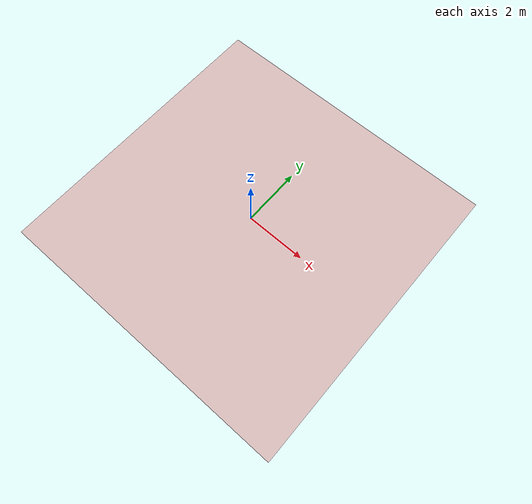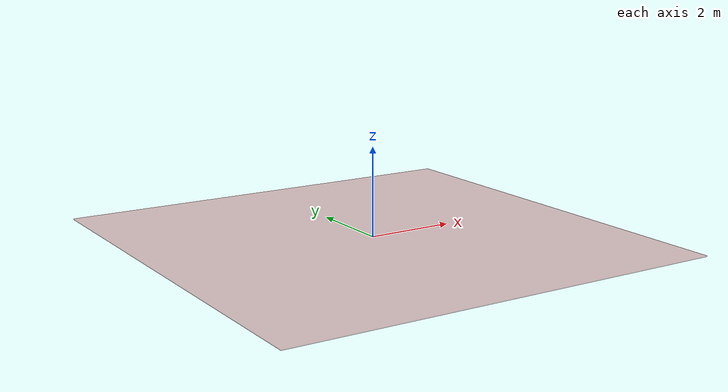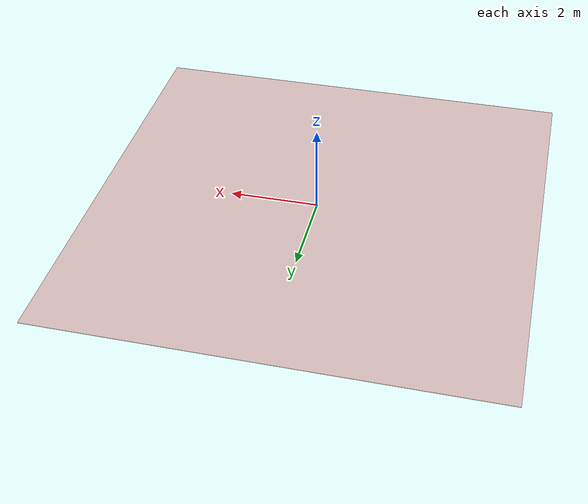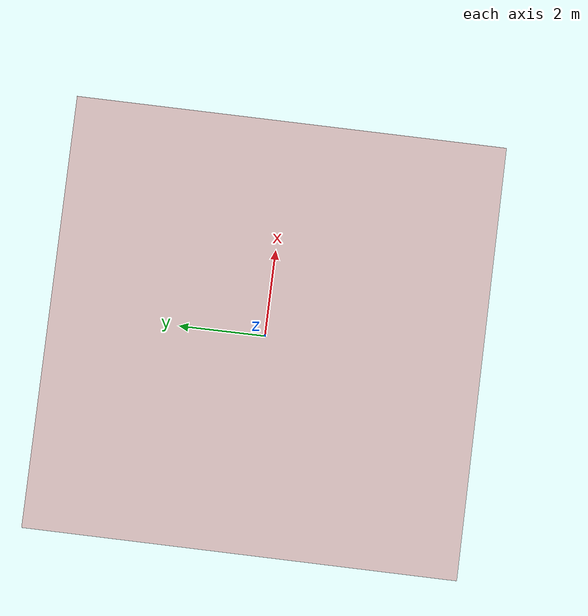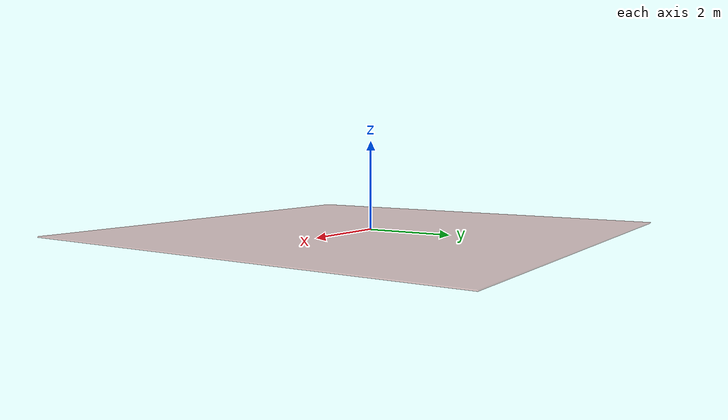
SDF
<?xml version="1.0"?>
<sdf version="1.7">
  <model name="table">
    <link name="table">
      <pose>0 0 0 0 0 0</pose>
      <inertial>
        <pose>0 0 0 0 0 0</pose>
        <mass>5.0e3</mass>
        <inertia>
          <ixx>16.8333</ixx>
          <ixy>0</ixy>
          <ixz>0</ixz>
          <iyy>16.8333</iyy>
          <iyz>0</iyz>
          <izz>33.3333</izz>
        </inertia>
      </inertial>
      <visual name="visual">
        <pose>0 0 0 0 0 0</pose>
        <geometry>
          <box>
            <size>10 10 0.02</size>
          </box>
        </geometry>
        <material>
          <diffuse>0.8 0.5 0.5 0.5</diffuse>
        </material>
      </visual>
      <collision name="collision">
        <pose>0 0 0 0 0 0</pose>
        <geometry>
          <box>
            <size>10 10 0.02</size>
          </box>
        </geometry>
        <drake:proximity_properties>
          <drake:compliant_hydroelastic/>
          <drake:hydroelastic_modulus>5.0e6</drake:hydroelastic_modulus>
          <drake:mesh_resolution_hint>0.01</drake:mesh_resolution_hint>
          <!-- Both mu_dynamic and mu_static are used in Continuous system.
            Only mu_dynamic is used in Discrete system.
          -->
          <drake:mu_dynamic>1.0</drake:mu_dynamic>
          <drake:mu_static>1.0</drake:mu_static>
        </drake:proximity_properties>
      </collision>
    </link>
  </model>
</sdf>
